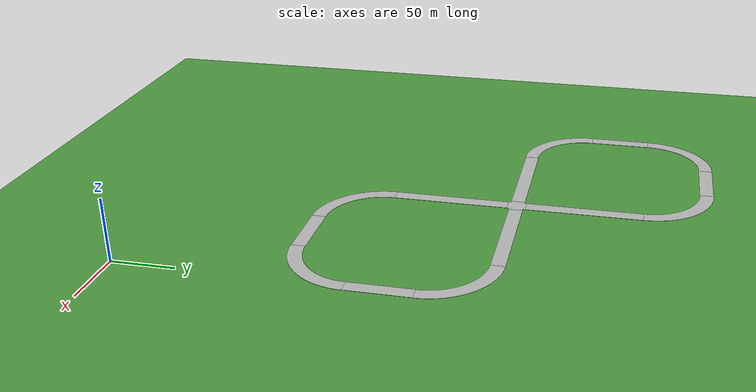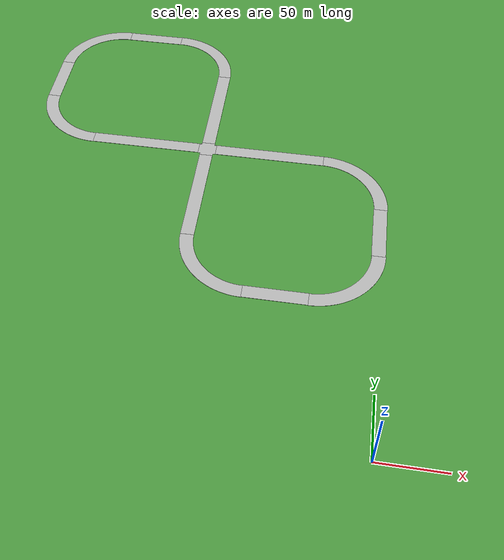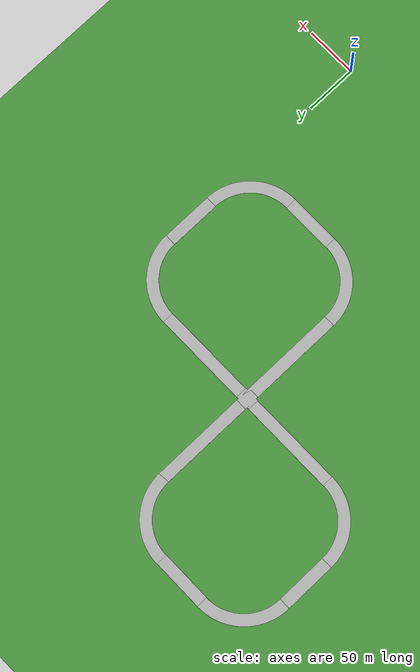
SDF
<sdf version="1.6">
 <world name="default">
  <light name="sun" type="directional">
   <pose>0 0 10 0 -0 0</pose>
   <diffuse>0.8 0.8 0.8 1</diffuse>
   <specular>0.2 0.2 0.2 1</specular>
   <attenuation>
    <range>1000</range>
    <constant>0.9</constant>
    <linear>0.01</linear>
    <quadratic>0.001</quadratic>
   </attenuation>
   <direction>-0.5 0.1 -0.9</direction>
  </light>
  <model name="ground_plane">
   <pose>0 0 -0.02 0 -0 0</pose>
   <static>1</static>
   <link name="link">
    <collision name="collision">
     <geometry><plane><normal>0 0 1</normal><size>100 100</size></plane></geometry>
     <surface><friction><ode><mu>100</mu><mu2>50</mu2></ode></friction></surface>
    </collision>
    <visual name="visual">
     <cast_shadows>0</cast_shadows>
     <geometry><plane><normal>0 0 1</normal><size>10000 10000</size></plane></geometry>
     <material>
      <script>
       <uri>model://grass_background/materials/scripts</uri>
       <uri>model://grass_background/materials/textures</uri>
       <name>GrassBackground</name>
      </script>
     </material>
    </visual>
   </link>
  </model>
  <gravity>0 0 -9.8</gravity>
  <magnetic_field>6e-06 2.3e-05 -4.2e-05</magnetic_field>
  <atmosphere type="adiabatic"/>
  <physics name="default_physics" default="0" type="ode">
   <max_step_size>0.005</max_step_size>
   <real_time_factor>1</real_time_factor>
   <real_time_update_rate>200</real_time_update_rate>
  </physics>
  <scene>
   <ambient>0.4 0.4 0.4 1</ambient>
   <background>0.7 0.7 0.7 1</background>
   <shadows>1</shadows>
   <grid>0</grid>
  </scene>
  <spherical_coordinates>
   <surface_model>EARTH_WGS84</surface_model>
   <latitude_deg>0</latitude_deg>
   <longitude_deg>0</longitude_deg>
   <elevation>0</elevation>
   <heading_deg>0</heading_deg>
  </spherical_coordinates>
  <model name="Intersection_15">
   <static>1</static>
   <link name="link">
    <inertial>
     <mass>1</mass>
     <inertia><ixx>1</ixx><iyy>1</iyy><izz>1</izz><ixy>0</ixy><ixz>0</ixz><iyz>0</iyz></inertia>
    </inertial>
    <collision name="collision">
     <geometry><mesh><uri>model://intersection/meshes/intersection.dae</uri><scale>1 1 1</scale></mesh></geometry>
    </collision>
    <visual name="visual">
     <geometry><mesh><uri>model://intersection/meshes/intersection.dae</uri><scale>1 1 1</scale></mesh></geometry>
    </visual>
   </link>
   <pose>-150.845 273.918 0.0001 0 -0 0</pose>
  </model>
  <audio><device>default</device></audio>
  <model name="Curved Road - 50m_6_clone">
   <static>1</static>
   <link name="link">
    <inertial>
     <mass>1</mass>
     <inertia><ixx>1</ixx><iyy>1</iyy><izz>1</izz><ixy>0</ixy><ixz>0</ixz><iyz>0</iyz></inertia>
    </inertial>
    <collision name="collision">
     <geometry>
      <mesh><uri>model://curved_road_50m/meshes/curved_road_50m.dae</uri><scale>1 1 1</scale></mesh>
     </geometry>
    </collision>
    <visual name="visual">
     <geometry>
      <mesh><uri>model://curved_road_50m/meshes/curved_road_50m.dae</uri><scale>1 1 1</scale></mesh>
     </geometry>
    </visual>
   </link>
   <pose>-173.125 401.45 0 0 -0 1.5707</pose>
  </model>
  <model name="Curved Road - 50m_5_clone">
   <static>1</static>
   <link name="link">
    <inertial>
     <mass>1</mass>
     <inertia><ixx>1</ixx><iyy>1</iyy><izz>1</izz><ixy>0</ixy><ixz>0</ixz><iyz>0</iyz></inertia>
    </inertial>
    <collision name="collision">
     <geometry>
      <mesh><uri>model://curved_road_50m/meshes/curved_road_50m.dae</uri><scale>1 1 1</scale></mesh>
     </geometry>
    </collision>
    <visual name="visual">
     <geometry>
      <mesh><uri>model://curved_road_50m/meshes/curved_road_50m.dae</uri><scale>1 1 1</scale></mesh>
     </geometry>
    </visual>
   </link>
   <pose>-278.568 296.148 0 0 0 -1.5707</pose>
  </model>
  <model name="Curved Road - 50m_4_clone">
   <static>1</static>
   <link name="link">
    <inertial>
     <mass>1</mass>
     <inertia><ixx>1</ixx><iyy>1</iyy><izz>1</izz><ixy>0</ixy><ixz>0</ixz><iyz>0</iyz></inertia>
    </inertial>
    <collision name="collision">
     <geometry>
      <mesh><uri>model://curved_road_50m/meshes/curved_road_50m.dae</uri><scale>1 1 1</scale></mesh>
     </geometry>
    </collision>
    <visual name="visual">
     <geometry>
      <mesh><uri>model://curved_road_50m/meshes/curved_road_50m.dae</uri><scale>1 1 1</scale></mesh>
     </geometry>
    </visual>
   </link>
   <pose>-278.563 401.58 0 0 -0 3.14159</pose>
  </model>
  <model name="Curved Road - 50m_6_clone_clone">
   <static>1</static>
   <link name="link">
    <inertial>
     <mass>1</mass>
     <inertia><ixx>1</ixx><iyy>1</iyy><izz>1</izz><ixy>0</ixy><ixz>0</ixz><iyz>0</iyz></inertia>
    </inertial>
    <collision name="collision">
     <geometry>
      <mesh><uri>model://curved_road_50m/meshes/curved_road_50m.dae</uri><scale>1 1 1</scale></mesh>
     </geometry>
    </collision>
    <visual name="visual">
     <geometry>
      <mesh><uri>model://curved_road_50m/meshes/curved_road_50m.dae</uri><scale>1 1 1</scale></mesh>
     </geometry>
    </visual>
   </link>
   <pose>-23.2533 251.925 0 0 -0 1.5707</pose>
  </model>
  <model name="Curved Road - 50m_5_clone_clone">
   <static>1</static>
   <link name="link">
    <inertial>
     <mass>1</mass>
     <inertia><ixx>1</ixx><iyy>1</iyy><izz>1</izz><ixy>0</ixy><ixz>0</ixz><iyz>0</iyz></inertia>
    </inertial>
    <collision name="collision">
     <geometry>
      <mesh><uri>model://curved_road_50m/meshes/curved_road_50m.dae</uri><scale>1 1 1</scale></mesh>
     </geometry>
    </collision>
    <visual name="visual">
     <geometry>
      <mesh><uri>model://curved_road_50m/meshes/curved_road_50m.dae</uri><scale>1 1 1</scale></mesh>
     </geometry>
    </visual>
   </link>
   <pose>-128.619 146.587 0 0 0 -1.5707</pose>
  </model>
  <model name="Curved Road - 50m_4_clone_clone">
   <static>1</static>
   <link name="link">
    <inertial>
     <mass>1</mass>
     <inertia><ixx>1</ixx><iyy>1</iyy><izz>1</izz><ixy>0</ixy><ixz>0</ixz><iyz>0</iyz></inertia>
    </inertial>
    <collision name="collision">
     <geometry>
      <mesh><uri>model://curved_road_50m/meshes/curved_road_50m.dae</uri><scale>1 1 1</scale></mesh>
     </geometry>
    </collision>
    <visual name="visual">
     <geometry>
      <mesh><uri>model://curved_road_50m/meshes/curved_road_50m.dae</uri><scale>1 1 1</scale></mesh>
     </geometry>
    </visual>
   </link>
   <pose>-23.2856 146.604 0 0 -0 0</pose>
  </model>
  <model name="Straight Road - 100m">
   <static>1</static>
   <link name="link">
    <inertial>
     <mass>1</mass>
     <inertia><ixx>1</ixx><iyy>1</iyy><izz>1</izz><ixy>0</ixy><ixz>0</ixz><iyz>0</iyz></inertia>
    </inertial>
    <collision name="collision">
     <geometry><mesh><uri>model://straight_road_100m/meshes/straight_road_100m.dae</uri></mesh></geometry>
    </collision>
    <visual name="visual">
     <geometry><mesh><uri>model://straight_road_100m/meshes/straight_road_100m.dae</uri></mesh></geometry>
    </visual>
   </link>
   <pose>-100.788 284.159 0 0 -0 0</pose>
  </model>
  <model name="Straight Road - 100m_0">
   <static>1</static>
   <link name="link">
    <inertial>
     <mass>1</mass>
     <inertia><ixx>1</ixx><iyy>1</iyy><izz>1</izz><ixy>0</ixy><ixz>0</ixz><iyz>0</iyz></inertia>
    </inertial>
    <collision name="collision">
     <geometry><mesh><uri>model://straight_road_100m/meshes/straight_road_100m.dae</uri></mesh></geometry>
    </collision>
    <visual name="visual">
     <geometry><mesh><uri>model://straight_road_100m/meshes/straight_road_100m.dae</uri></mesh></geometry>
    </visual>
   </link>
   <pose>-200.859 284.113 0 0 -0 0</pose>
  </model>
  <model name="Straight Road - 100m_1">
   <static>1</static>
   <link name="link">
    <inertial>
     <mass>1</mass>
     <inertia><ixx>1</ixx><iyy>1</iyy><izz>1</izz><ixy>0</ixy><ixz>0</ixz><iyz>0</iyz></inertia>
    </inertial>
    <collision name="collision">
     <geometry><mesh><uri>model://straight_road_100m/meshes/straight_road_100m.dae</uri></mesh></geometry>
    </collision>
    <visual name="visual">
     <geometry><mesh><uri>model://straight_road_100m/meshes/straight_road_100m.dae</uri></mesh></geometry>
    </visual>
   </link>
   <pose>-140.869 324.039 0 0 0 -1.5707</pose>
  </model>
  <model name="Straight Road - 100m_1_clone">
   <static>1</static>
   <link name="link">
    <inertial>
     <mass>1</mass>
     <inertia><ixx>1</ixx><iyy>1</iyy><izz>1</izz><ixy>0</ixy><ixz>0</ixz><iyz>0</iyz></inertia>
    </inertial>
    <collision name="collision">
     <geometry><mesh><uri>model://straight_road_100m/meshes/straight_road_100m.dae</uri></mesh></geometry>
    </collision>
    <visual name="visual">
     <geometry><mesh><uri>model://straight_road_100m/meshes/straight_road_100m.dae</uri></mesh></geometry>
    </visual>
   </link>
   <pose>-160.859 224.204 0 0 -0 1.5707</pose>
  </model>
  <model name="Straight Road - 50m">
   <static>1</static>
   <link name="link">
    <inertial>
     <mass>1</mass>
     <inertia><ixx>1</ixx><iyy>1</iyy><izz>1</izz><ixy>0</ixy><ixz>0</ixz><iyz>0</iyz></inertia>
    </inertial>
    <collision name="collision">
     <geometry><mesh><uri>model://straight_road_50m/meshes/straight_road_50m.dae</uri></mesh></geometry>
    </collision>
    <visual name="visual">
     <geometry><mesh><uri>model://straight_road_50m/meshes/straight_road_50m.dae</uri></mesh></geometry>
    </visual>
   </link>
   <pose>-11.2225 199.19 0 0 -0 1.5707</pose>
  </model>
  <model name="Straight Road - 50m_clone">
   <static>1</static>
   <link name="link">
    <inertial>
     <mass>1</mass>
     <inertia><ixx>1</ixx><iyy>1</iyy><izz>1</izz><ixy>0</ixy><ixz>0</ixz><iyz>0</iyz></inertia>
    </inertial>
    <collision name="collision">
     <geometry><mesh><uri>model://straight_road_50m/meshes/straight_road_50m.dae</uri></mesh></geometry>
    </collision>
    <visual name="visual">
     <geometry><mesh><uri>model://straight_road_50m/meshes/straight_road_50m.dae</uri></mesh></geometry>
    </visual>
   </link>
   <pose>-75.8904 134.547 0 0 -0 0</pose>
  </model>
  <model name="Straight Road - 50m_clone_clone">
   <static>1</static>
   <link name="link">
    <inertial>
     <mass>1</mass>
     <inertia><ixx>1</ixx><iyy>1</iyy><izz>1</izz><ixy>0</ixy><ixz>0</ixz><iyz>0</iyz></inertia>
    </inertial>
    <collision name="collision">
     <geometry><mesh><uri>model://straight_road_50m/meshes/straight_road_50m.dae</uri></mesh></geometry>
    </collision>
    <visual name="visual">
     <geometry><mesh><uri>model://straight_road_50m/meshes/straight_road_50m.dae</uri></mesh></geometry>
    </visual>
   </link>
   <pose>-225.876 413.552 0 0 -0 3.13897</pose>
  </model>
  <model name="Straight Road - 50m_clone_0">
   <static>1</static>
   <link name="link">
    <inertial>
     <mass>1</mass>
     <inertia><ixx>1</ixx><iyy>1</iyy><izz>1</izz><ixy>0</ixy><ixz>0</ixz><iyz>0</iyz></inertia>
    </inertial>
    <collision name="collision">
     <geometry><mesh><uri>model://straight_road_50m/meshes/straight_road_50m.dae</uri></mesh></geometry>
    </collision>
    <visual name="visual">
     <geometry><mesh><uri>model://straight_road_50m/meshes/straight_road_50m.dae</uri></mesh></geometry>
    </visual>
   </link>
   <pose>-310.812 348.86 0 0 -0 1.5707</pose>
  </model>
 </world>
</sdf>
